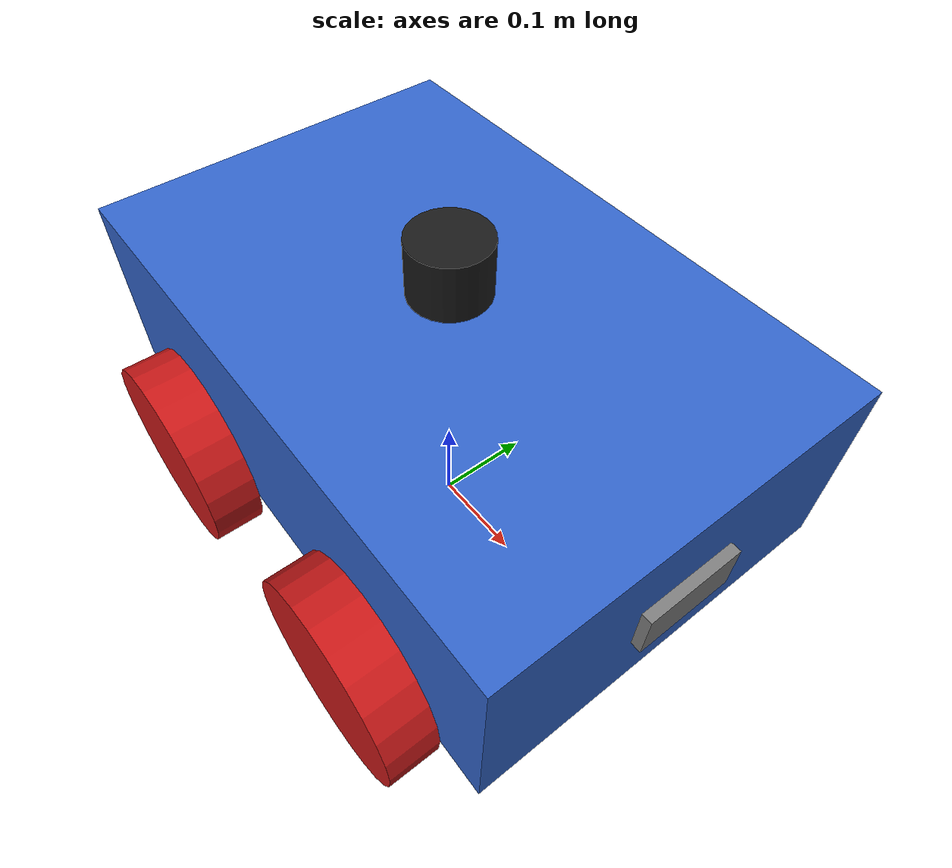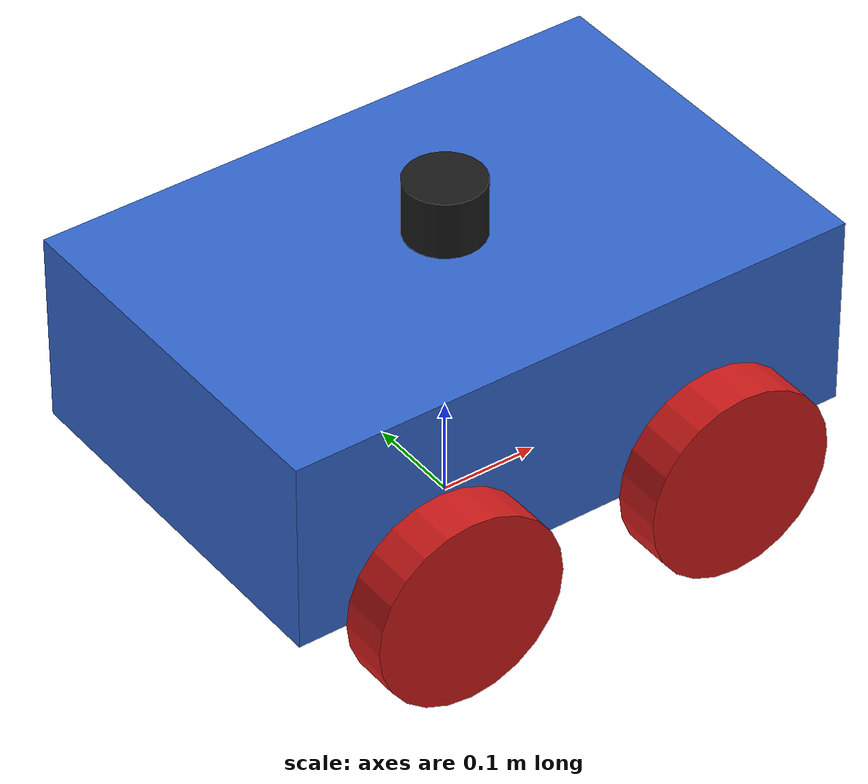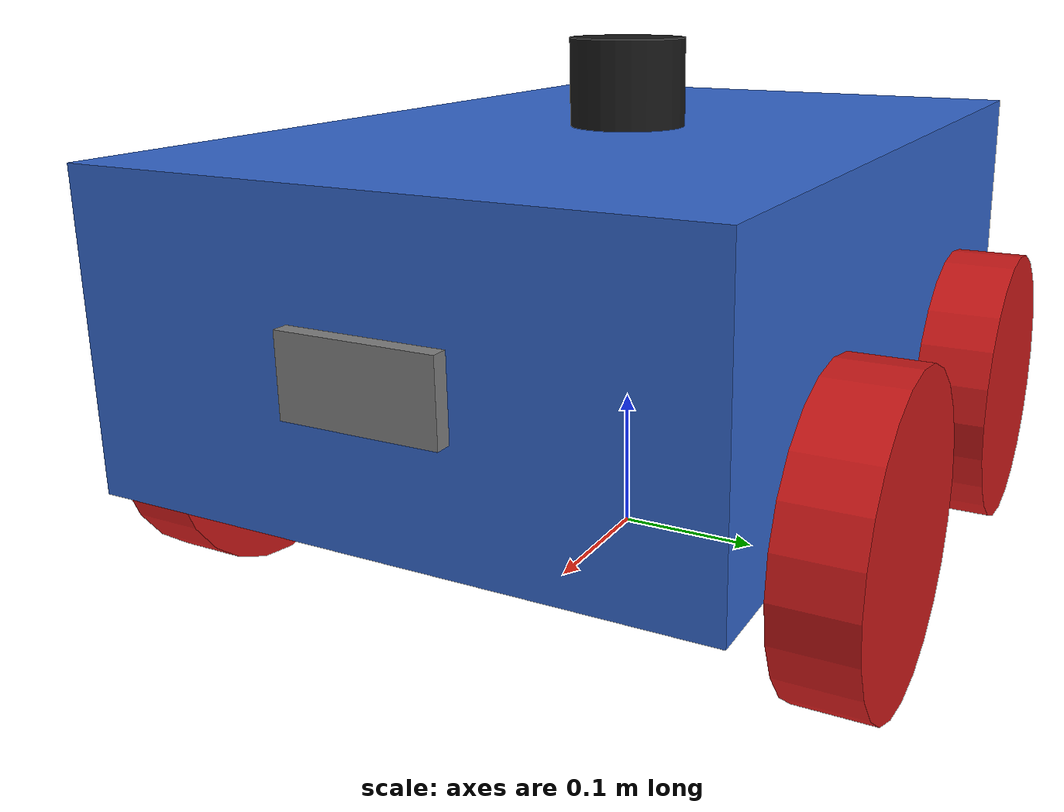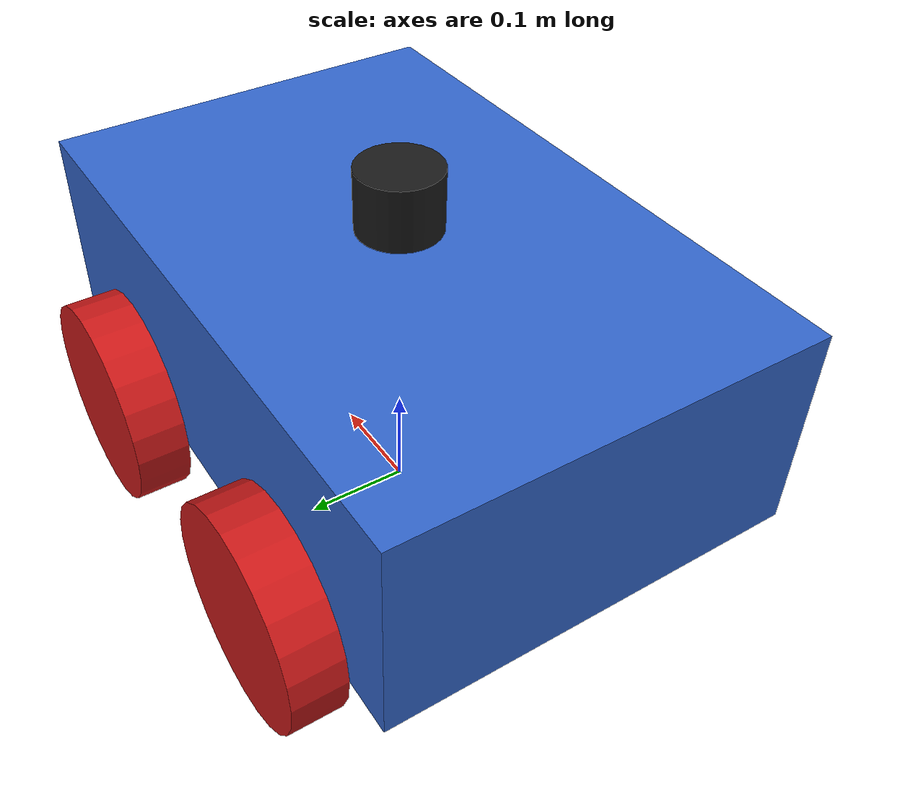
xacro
<?xml version="1.0"?>
<robot name="my_robot" xmlns:xacro="http://www.ros.org/wiki/xacro">

  <xacro:include filename="common_properties.xacro"/>
  <xacro:common_materials/>
  <xacro:include filename="mobile_base.xacro"/>
  <xacro:include filename="mobile_base_gazebo.xacro"/>
  <xacro:include filename="camera.xacro"/>
  <xacro:include filename="sensors.xacro"/>

</robot>

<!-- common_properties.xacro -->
<robot xmlns:xacro="http://www.ros.org/wiki/xacro">

  <!-- Common Materials      -->
  <xacro:macro name="common_materials">
    <material name="green">
      <color rgba="0 1 0 1"/>
    </material>

    <material name="grey">
      <color rgba="0.5 0.5 0.5 1"/>
    </material>

    <material name="blue">
      <color rgba="0.2 0.4 0.8 1"/>
    </material>

    <material name="red">
      <color rgba="0.8 0.1 0.1 1"/>
    </material>

    <material name="white">
      <color rgba="1.0 1.0 1.0 1"/>
    </material>
  </xacro:macro>

  <!-- Box Inertia           -->
  <xacro:macro name="box_inertia" params="m x y z o_xyz o_rpy">
    <inertial>
      <mass value="${m}"/>
      <origin xyz="${o_xyz}" rpy="${o_rpy}"/>
      <inertia
        ixx="${m/12.0 * (z*z + y*y)}"
        ixy="0"
        ixz="0"
        iyy="${m/12.0 * (x*x + z*z)}"
        iyz="0"
        izz="${m/12.0 * (x*x + y*y)}"/>
    </inertial>
  </xacro:macro>

  <!-- Cylinder Inertia      -->
  <xacro:macro name="cylinder_inertia" params="m r l o_xyz o_rpy">
    <inertial>
      <mass value="${m}"/>
      <origin xyz="${o_xyz}" rpy="${o_rpy}"/>
      <inertia
        ixx="${m/12.0 * (3*r*r + l*l)}"
        ixy="0"
        ixz="0"
        iyy="${m/12.0 * (3*r*r + l*l)}"
        iyz="0"
        izz="${m/2.0 * (r*r)}"/>
    </inertial>
  </xacro:macro>

  <!-- Sphere Inertia        -->
  <xacro:macro name="sphere_inertia" params="m r o_xyz o_rpy">
    <inertial>
      <mass value="${m}"/>
      <origin xyz="${o_xyz}" rpy="${o_rpy}"/>
      <inertia
        ixx="${2.0/5.0 * m * r * r}"
        ixy="0"
        ixz="0"
        iyy="${2.0/5.0 * m * r * r}"
        iyz="0"
        izz="${2.0/5.0 * m * r * r}"/>
    </inertial>
  </xacro:macro>

</robot>

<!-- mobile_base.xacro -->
<robot xmlns:xacro="http://www.ros.org/wiki/xacro">

    <xacro:property name="base_length" value="0.6" />
    <xacro:property name="base_width" value="0.4" />
    <xacro:property name="base_height" value="0.2" />
    <xacro:property name="wheel_radius" value="0.1" />
    <xacro:property name="wheel_length" value="0.05" />

    <link name="imu_frame"/>

    <joint name="imu_joint" type="fixed">
        <parent link="base_link"/>
        <child link="imu_frame"/>
        <origin xyz="0.0 0.0 0.08" rpy="0.0 0.0 0.0"/>
    </joint>

    <link name="base_link">
        <visual>
            <geometry>
                <box size="${base_length} ${base_width} ${base_height}" />
            </geometry>
            <origin xyz="0 0 ${base_height / 2.0}" rpy="0 0 0" />
            <material name="blue" />
        </visual>
        <collision>
            <geometry>
                <box size="${base_length} ${base_width} ${base_height}" />
            </geometry>
            <origin xyz="0 0 ${base_height / 2.0}" rpy="0 0 0" />
        </collision>
        <xacro:box_inertia m="100.0" l="${2*base_length}" w="${2*base_width}" h="${2*base_height}"
                           xyz="0 0 ${base_height / 2.0}" rpy="0 0 0" />
    </link>

    <xacro:macro name="wheel_link" params="prefix">
        <link name="${prefix}_wheel_link">
            <visual>
                <geometry>
                    <cylinder radius="${wheel_radius}" length="${wheel_length}" />
                </geometry>
                <origin xyz="0 0 0" rpy="${pi / 2.0} 0 0" />
                <material name="red" />
            </visual>
            <collision>
                <geometry>
                    <cylinder radius="${wheel_radius}" length="${wheel_length}" />
                </geometry>
                <origin xyz="0 0 0" rpy="${pi / 2.0} 0 0" />
            </collision>
            <xacro:cylinder_inertia m="10.0" r="${2*wheel_radius}" h="${2*wheel_length}"
                                    xyz="0 0 0" rpy="${pi / 2.0} 0 0" />
        </link>
    </xacro:macro>

    <xacro:wheel_link prefix="right_back" />
    <xacro:wheel_link prefix="left_back" />
    <xacro:wheel_link prefix="right_front" />
    <xacro:wheel_link prefix="left_front" />

    <link name="base_footprint">
    </link>

    <joint name="base_right_back_wheel_joint" type="continuous">
        <parent link="base_link" />
        <child link="right_back_wheel_link" />
        <origin xyz="${-base_length / 4.0} ${-(base_width + wheel_length) / 2.0} 0" rpy="0 0 0" />
        <axis xyz="0 1 0" />
    </joint>

    <joint name="base_right_front_wheel_joint" type="continuous">
        <parent link="base_link" />
        <child link="right_front_wheel_link" />
        <origin xyz="${(base_length) / 4.0} ${-(base_width + wheel_length) / 2.0} 0" rpy="0 0 0" />
        <axis xyz="0 1 0" />
    </joint>

     <joint name="base_left_back_wheel_joint" type="continuous">
        <parent link="base_link" />
        <child link="left_back_wheel_link" />
        <origin xyz="${-base_length / 4.0} ${(base_width + wheel_length) / 2.0} 0" rpy="0 0 0" />
        <axis xyz="0 1 0" />
    </joint>

    <joint name="base_left_front_wheel_joint" type="continuous">
        <parent link="base_link" />
        <child link="left_front_wheel_link" />
        <origin xyz="${base_length / 4.0} ${(base_width + wheel_length) / 2.0} 0" rpy="0 0 0" />
        <axis xyz="0 1 0" />
    </joint>

    <joint name="base_footprint_joint" type="fixed">
        <parent link="base_footprint" />
        <child link="base_link" />
        <origin xyz="0 0 ${wheel_radius}" rpy="0 0 0" />
    </joint>

</robot>

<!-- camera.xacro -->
<robot xmlns:xacro="http://www.ros.org/wiki/xacro">

    <xacro:property name="camera_length" value="0.01"/>
    <xacro:property name="camera_width" value="0.1"/>
    <xacro:property name="camera_height" value="0.05"/>

    <link name="camera_link">
        <visual>
            <geometry>
                <box size="${camera_length} ${camera_width} ${camera_height}"/>
            </geometry>
            <origin xyz="0 0 0" rpy="0 0 0"/>
            <material name="grey"/>
        </visual>

        <collision>
            <geometry>
                <box size="${camera_length} ${camera_width} ${camera_height}"/>
            </geometry>
        </collision>

        <xacro:box_inertia
            m="0.1"
            x="${camera_length}"
            y="${camera_width}"
            z="${camera_height}"
            o_xyz="0 0 0"
            o_rpy="0 0 0"/>
    </link>

    <link name="camera_link_optical"/>

    <joint name="camera_optical_joint" type="fixed">
        <origin xyz="0 0 0" rpy="${-pi/2} 0 ${-pi/2}"/>
        <parent link="camera_link"/>
        <child link="camera_link_optical"/>
    </joint>

    <joint name="base_camera_joint" type="fixed">
        <parent link="base_link"/>
        <child link="camera_link"/>
        <origin xyz="${(base_length + camera_length)/2.0} 0 ${base_height/2.0}" rpy="0 0 0"/>
    </joint>

    <gazebo reference="camera_link">
        <sensor name="camera" type="camera">
            <camera>
                <horizontal_fov>1.3962634</horizontal_fov>
                <image>
                    <width>640</width>
                    <height>480</height>
                    <format>R8G8B8</format>
                </image>
                <clip>
                    <near>0.1</near>
                    <far>15</far>
                </clip>
                <noise>
                    <type>gaussian</type>
                    <mean>0.0</mean>
                    <stddev>0.007</stddev>
                </noise>
                <optical_frame_id>camera_link_optical</optical_frame_id>
                <camera_info_topic>/camera/camera_info</camera_info_topic>
            </camera>
            <always_on>1</always_on>
            <update_rate>20</update_rate>
            <visualize>true</visualize>
            <topic>/camera/image_raw</topic>
        </sensor>
    </gazebo>

</robot>

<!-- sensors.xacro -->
<robot xmlns:xacro="http://www.ros.org/wiki/xacro">

  <!--   SENSORS XACRO — LiDAR + IMU                                  -->
  <!--   Stack   ROS 2 Jazzy + Gazebo Harmonic                       -->
  <!--   Camera  already defined elsewhere — NOT touched here         -->
  <!--   MOUNTING STRATEGY                                            -->
  <!--   LiDAR  top of chassis, centered at (0,0) — over CoR          -->
  <!--   IMU    center of chassis at (0,0,0) — at CoM, under LiDAR    -->
  <!--   Lever arm between LiDAR and IMU  only Z offset (LIDAR_Z)     -->
  <!--   This minimizes extrinsic calibration complexity for fusion    -->

  <!-- ─── ROBOT GEOMETRY PROPERTIES ─────────────────────────────── -->
  <!--  ⚠️  CHANGE chassis_z to match YOUR robot's actual height       -->
  <!--     For my robot: chassis_z = 0.20                             -->
  <xacro:property name="chassis_z"      value="0.20"/>   <!-- robot body height in metres -->

  <!-- Derived geometry -->
  <!-- NOTE: Since base_link is at the bottom of the chassis box (z=0),
       the top of the chassis is at z=chassis_z, not chassis_z/2 -->
  <xacro:property name="chassis_top"    value="${chassis_z}"/>        <!-- top surface z from base_link -->
  <xacro:property name="lidar_radius"   value="0.04"/>                    <!-- LiDAR cylinder radius -->
  <xacro:property name="lidar_height"   value="0.06"/>                    <!-- LiDAR cylinder height -->
  <xacro:property name="lidar_z"        value="${chassis_top + lidar_height / 2}"/> <!-- LiDAR center z -->
  <xacro:property name="imu_box_size"   value="0.01"/>                    <!-- IMU visual cube side -->

  <!--  2.1  LiDAR                                                     -->
  <!--  Position x=0, y=0 (center of rotation), z=chassis_top+r      -->
  <!--  This gives 360° unobstructed FOV above the chassis             -->

  <link name="lidar_link">

    <visual>
      <origin xyz="0 0 0" rpy="0 0 0"/>
      <geometry>
        <cylinder radius="${lidar_radius}" length="${lidar_height}"/>
      </geometry>
      <material name="lidar_dark">
        <color rgba="0.1 0.1 0.1 1.0"/>
      </material>
    </visual>

    <collision>
      <origin xyz="0 0 0" rpy="0 0 0"/>
      <geometry>
        <cylinder radius="${lidar_radius}" length="${lidar_height}"/>
      </geometry>
    </collision>

    <inertial>
      <!-- Approximate inertia for a 100g cylinder -->
      <!-- I_xx = I_yy = m(3r² + h²)/12, I_zz = mr²/2 -->
      <mass value="0.1"/>
      <origin xyz="0 0 0" rpy="0 0 0"/>
      <inertia
        ixx="${0.1 * (3 * lidar_radius * lidar_radius + lidar_height * lidar_height) / 12}"
        ixy="0.0" ixz="0.0"
        iyy="${0.1 * (3 * lidar_radius * lidar_radius + lidar_height * lidar_height) / 12}"
        iyz="0.0"
        izz="${0.1 * lidar_radius * lidar_radius / 2}"/>
    </inertial>

  </link>

  <joint name="lidar_joint" type="fixed">
    <parent link="base_link"/>
    <child  link="lidar_link"/>
    <origin xyz="0 0 ${lidar_z}" rpy="0 0 0"/>
  </joint>

  <!-- ── Gazebo Harmonic sensor definition for LiDAR ─────────────── -->
  <!--    type="gpu_lidar" is required for Gz Harmonic 2D scanning     -->
  <!--    Leading slash = absolute GZ topic → bridge gz_topic_name="/scan" matches exactly -->
  <!--    Without leading slash GZ prepends world/model/link/sensor namespace              -->
  <!--    gz_frame_id must match link name exactly for TF alignment     -->
  <gazebo reference="lidar_link">
    <sensor name="lidar_sensor" type="gpu_lidar">

      <pose>0 0 0 0 0 0</pose>
      <topic>/scan</topic>
      <update_rate>10</update_rate>
      <visualize>true</visualize>
      <always_on>true</always_on>

      <lidar>
        <scan>
          <horizontal>
            <samples>360</samples>
            <resolution>1.0</resolution>
            <min_angle>-3.14159265</min_angle>
            <max_angle>3.14159265</max_angle>
          </horizontal>
          <vertical>
            <samples>1</samples>
            <min_angle>0.0</min_angle>
            <max_angle>0.0</max_angle>
          </vertical>
        </scan>
        <range>
          <min>0.12</min>
          <max>10.0</max>
          <resolution>0.015</resolution>
        </range>
        <noise>
          <type>gaussian</type>
          <mean>0.0</mean>
          <stddev>0.01</stddev>
        </noise>
      </lidar>

      <!-- frame_id must match link name lidar_link -->
      <gz_frame_id>lidar_link</gz_frame_id>

    </sensor>
  </gazebo>

  <!--  2.2  IMU                                                       -->
  <!--  Position x=0, y=0, z=0 — at center of mass of chassis        -->
  <!--  Stacked directly below LiDAR (same x,y) — minimal lever arm   -->
  <!--  z=0 means IMU is at base_link origin = center of robot body    -->

  <link name="imu_link">

    <visual>
      <origin xyz="0 0 0" rpy="0 0 0"/>
      <geometry>
        <box size="${imu_box_size} ${imu_box_size} ${imu_box_size}"/>
      </geometry>
      <material name="imu_cyan">
        <color rgba="0.0 0.8 0.8 1.0"/>
      </material>
    </visual>

    <collision>
      <origin xyz="0 0 0" rpy="0 0 0"/>
      <geometry>
        <box size="${imu_box_size} ${imu_box_size} ${imu_box_size}"/>
      </geometry>
    </collision>

    <inertial>
      <!-- Virtual sensor — near-zero mass, minimal inertia -->
      <mass value="0.01"/>
      <origin xyz="0 0 0" rpy="0 0 0"/>
      <inertia
        ixx="1.67e-7" ixy="0.0" ixz="0.0"
        iyy="1.67e-7" iyz="0.0"
        izz="1.67e-7"/>
    </inertial>

  </link>

  <joint name="imu_joint" type="fixed">
    <parent link="base_link"/>
    <child  link="imu_link"/>
    <origin xyz="0 0 0" rpy="0 0 0"/>
  </joint>

  <!-- ── Gazebo Harmonic sensor definition for IMU ─────────────────  -->
  <!--    Requires gz-sim-imu-system plugin at the world/robot level    -->
  <!--    Leading slash = absolute GZ topic → bridge gz_topic_name="/imu" matches exactly -->
  <gazebo reference="imu_link">
    <sensor name="imu_sensor" type="imu">

      <pose>0 0 0 0 0 0</pose>
      <topic>/imu</topic>
      <update_rate>100</update_rate>
      <always_on>true</always_on>
      <visualize>false</visualize>

      <imu>
        <angular_velocity>
          <x><noise type="gaussian"><mean>0.0</mean><stddev>2e-4</stddev><bias_mean>0.0000075</bias_mean><bias_stddev>0.0000008</bias_stddev></noise></x>
          <y><noise type="gaussian"><mean>0.0</mean><stddev>2e-4</stddev><bias_mean>0.0000075</bias_mean><bias_stddev>0.0000008</bias_stddev></noise></y>
          <z><noise type="gaussian"><mean>0.0</mean><stddev>2e-4</stddev><bias_mean>0.0000075</bias_mean><bias_stddev>0.0000008</bias_stddev></noise></z>
        </angular_velocity>
        <linear_acceleration>
          <x><noise type="gaussian"><mean>0.0</mean><stddev>1.7e-2</stddev><bias_mean>0.1</bias_mean><bias_stddev>0.001</bias_stddev></noise></x>
          <y><noise type="gaussian"><mean>0.0</mean><stddev>1.7e-2</stddev><bias_mean>0.1</bias_mean><bias_stddev>0.001</bias_stddev></noise></y>
          <z><noise type="gaussian"><mean>0.0</mean><stddev>1.7e-2</stddev><bias_mean>0.1</bias_mean><bias_stddev>0.001</bias_stddev></noise></z>
        </linear_acceleration>
      </imu>

      <gz_frame_id>imu_link</gz_frame_id>

    </sensor>
  </gazebo>

</robot>
